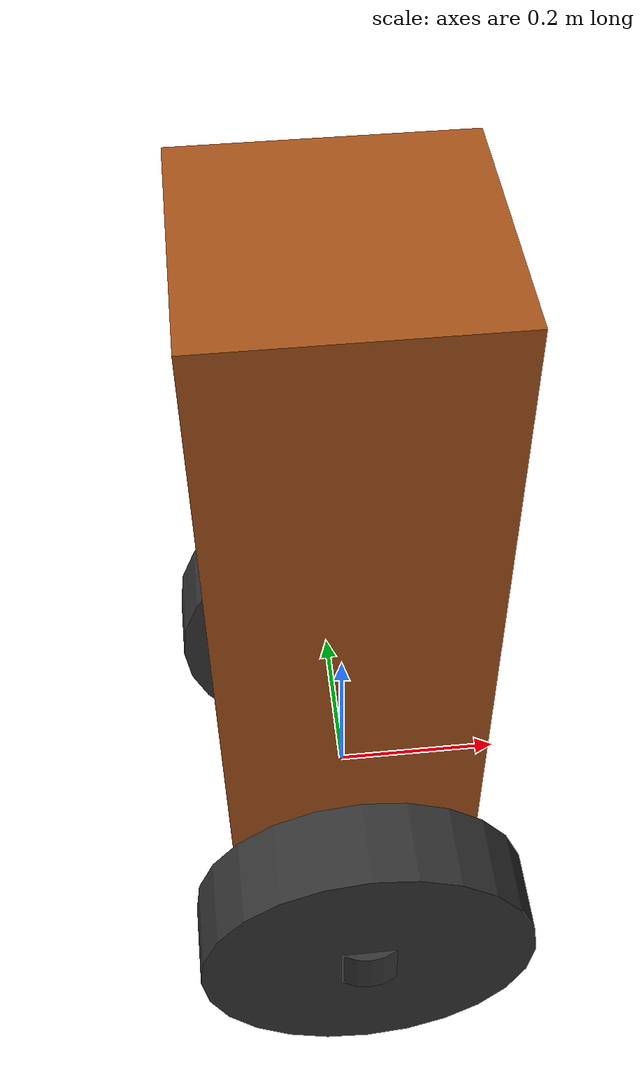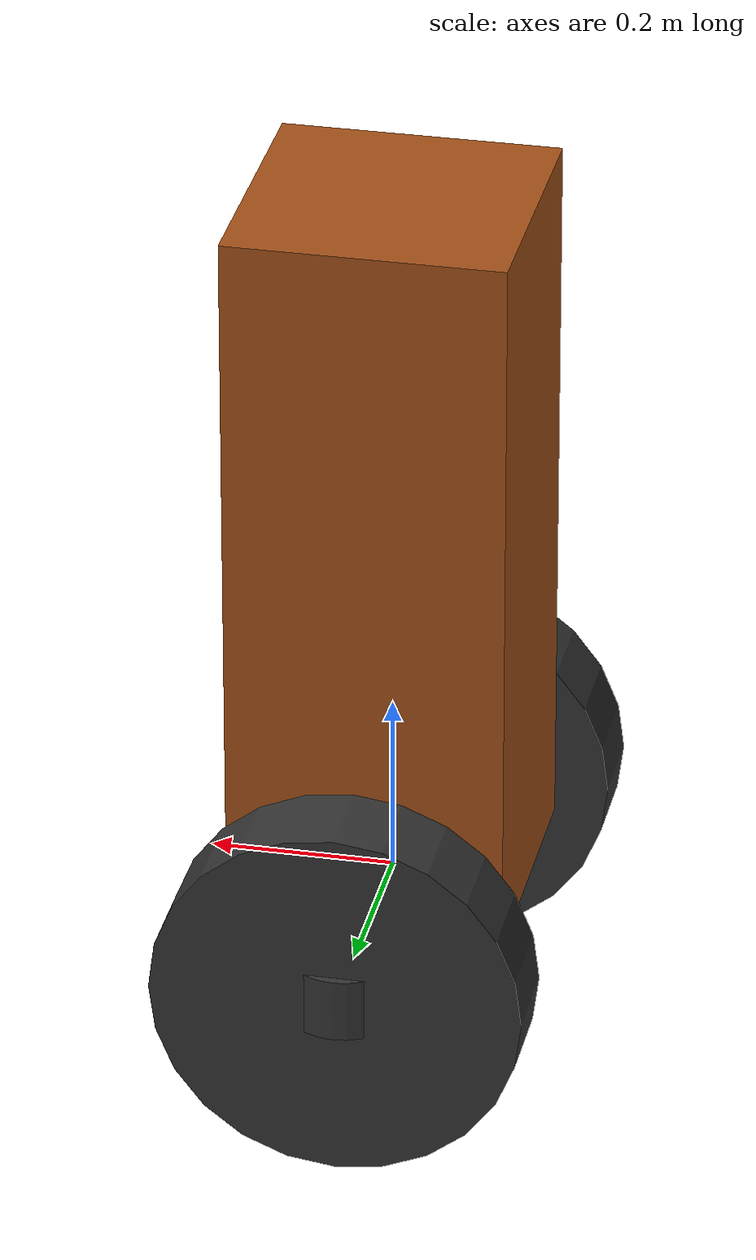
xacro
<?xml version="1.0"?>
<robot name="balance_bot" xmlns:xacro="http://www.ros.org/wiki/xacro">
  <xacro:include filename="$(find balance_bot_description)/urdf/balance_bot_friction.urdf"/>

  <xacro:arg name="wheel_mass" default="1.0" />
  <xacro:arg name="wheel_radius" default="0.2" />
  <xacro:arg name="body_mass" default="10.0" />
  <xacro:arg name="body_width" default="0.3" />
  <xacro:arg name="body_depth" default="0.3" />
  <xacro:arg name="body_length" default="0.8" />
  <xacro:arg name="training_wheels" default="false" />

  <xacro:property name="wheel_mass" value="$(arg wheel_mass)" />
  <xacro:property name="wheel_radius" value="$(arg wheel_radius)" />
  <xacro:property name="wheel_thickness" value="0.1" />
  <xacro:property name="wheelbase" value="${0.2 + body_width}" />

  <xacro:property name="body_mass" value="$(arg body_mass)" />
  <xacro:property name="body_width" value="$(arg body_width)" />
  <xacro:property name="body_depth" value="$(arg body_depth)" />
  <xacro:property name="body_length" value="$(arg body_length)" />

  <!-- IMU -->
  <link name="imu_link">
    <collision>
      <origin xyz="0 0 0" rpy="0 0 0"/>
      <geometry>
        <box size="0.02 0.015 0.008"/>
      </geometry>
    </collision>

    <visual>
      <origin xyz="0 0 0" rpy="0 0 0"/>
    <geometry>
        <box size="0.02 0.015 0.008"/>
      </geometry>
    </visual>

    <inertial>
      <mass value="1e-5" />
      <origin xyz="0 0 0" rpy="0 0 0"/>
      <inertia ixx="0" ixy="0" ixz="0" iyy="0" iyz="0" izz="0" />
    </inertial>
  </link>

  <joint name="imujoint" type="fixed">
    <origin xyz="0 0 0" rpy="0 0 0" />
    <parent link="body_com" />
    <child link="imu_link" />
    <axis xyz="0 0 0" />
  </joint>

  <xacro:macro name="wheel" params="name y_offset" >
    <link name="${name}" >
      <inertial>
        <origin xyz="0 0 0" rpy="0 0 0"/>
        <mass value="${wheel_mass}"/>
        <inertia ixx="${wheel_mass/12*(3*wheel_radius*wheel_radius + wheel_thickness*wheel_thickness)}" ixy="0" ixz="0" iyy="${wheel_mass/12*(3*wheel_radius*wheel_radius + wheel_thickness*wheel_thickness)}" iyz="0" izz="${wheel_mass/2 * wheel_radius*wheel_radius}"/>
      </inertial>
      <visual>
        <origin xyz="0 0 0" rpy="0 0 0"/>
        <geometry>
          <cylinder radius="${wheel_radius}" length="${wheel_thickness}"/>
        </geometry>
        <material name="grey"/>
      </visual>
      <visual>
        <origin xyz="0 0 0" rpy="1.5707 0 0"/>
        <geometry>
          <cylinder radius="${wheel_thickness/2 + 0.01}" length="0.07"/>
        </geometry>
        <material name="grey"/>
      </visual>
      <collision name="collision_${name}">
        <origin xyz="0 0 0" rpy="0 0 0"/>
        <geometry>
          <cylinder radius="${wheel_radius}" length="${wheel_thickness}"/>
        </geometry>
      </collision>
    </link>
    <joint name="${name}" type="continuous">
      <origin xyz="0 ${y_offset} 0" rpy="-1.570796 0 0"/>
      <parent link="base_link"/>
      <child link="${name}"/>
      <axis xyz="0 0 1" />
    </joint>
  </xacro:macro>

  <wheel name="left_wheel" y_offset="${wheelbase/2}" />
  <wheel name="right_wheel" y_offset="${-wheelbase/2}" />

  <link name="body_com">
    <inertial>
      <origin xyz="0 0 0" rpy="0 0 0"/>
      <mass value="${body_mass}"/>
      <inertia ixx="${body_mass/12 * (body_width*body_width + body_length*body_length)}" ixy="0" ixz="0" iyy="${body_mass/12 * (body_length*body_length + body_depth*body_depth)}" iyz="0" izz="${body_mass/12 * (body_width*body_width + body_depth*body_depth)}"/>
    </inertial>
    <visual>
      <origin xyz="0 0 0" rpy="0 0 0"/>
      <geometry>
        <box size="${body_depth} ${body_width} ${body_length}"/>
      </geometry>
      <material name="orange"/>
    </visual>
    <collision name="collision_chassis">
      <origin xyz="0 0 0" rpy="0 0 0"/>
      <geometry>
        <box size="${body_depth} ${body_width} ${body_length}"/>
      </geometry>
    </collision>
  </link>

  <link name="base_link">
    <inertial>
      <origin xyz="0 0 0" rpy="0 0 0"/>
      <mass value="0.01"/>
      <inertia ixx="0.01" ixy="0" ixz="0" iyy="0.01" iyz="0" izz="0.01"/>
    </inertial>
    <xacro:if value="$(arg training_wheels)" >
      <collision name="training_wheel_1">
        <origin xyz="1 0 ${0.025-wheel_radius}" rpy="0 0 0"/>
        <geometry>
          <sphere radius="0.024"/>
        </geometry>
      </collision>
      <collision name="training_wheel_2">
        <origin xyz="-1 0 ${0.025-wheel_radius}" rpy="0 0 0"/>
        <geometry>
          <sphere radius="0.024"/>
        </geometry>
      </collision>
    </xacro:if>
  </link>

  <joint name="base_com" type="fixed">
    <origin xyz="0 0 ${body_length/2}" rpy="0 0 0"/>
    <parent link="base_link"/>
    <child link="body_com"/>
  </joint>

  <material name="grey">
    <color rgba="0.2 0.2 0.2 1.0"/>
  </material>

  <material name="orange">
    <color rgba="0.64 0.313939 0.095351 1.0"/>
  </material>

<gazebo>
    <plugin name="gazebo_ros_control" filename="libgazebo_ros_control.so">
     <robotNamespace>/balance_bot</robotNamespace>
     <robotSimType>gazebo_ros_control/DefaultRobotHWSim</robotSimType>
    </plugin>
</gazebo>

<transmission name="left_wheel_control">
    <type>transmission_interface/SimpleTransmission</type>
    <joint name="left_wheel">
     <hardwareInterface>hardware_interface/EffortJointInterface</hardwareInterface>
    </joint>
    <actuator name="left_wheel_motor">
     <hardwareInterface>hardware_interface/EffortJointInterface</hardwareInterface>
     <mechanicalReduction>1</mechanicalReduction>
    </actuator>
</transmission>

<transmission name="right_wheel_control">
    <type>transmission_interface/SimpleTransmission</type>
    <joint name="right_wheel">
     <hardwareInterface>hardware_interface/EffortJointInterface</hardwareInterface>
    </joint>
    <actuator name="right_wheel_motor">
     <hardwareInterface>hardware_interface/EffortJointInterface</hardwareInterface>
     <mechanicalReduction>1</mechanicalReduction>
    </actuator>
</transmission>

  <!-- imu plugin -->
  <gazebo reference="imu_link">
    <gravity>true</gravity>
    <sensor name="imu_sensor" type="imu">
      <always_on>true</always_on>
      <update_rate>200</update_rate>
      <visualize>true</visualize>
      <topic>default_topic</topic>
      <plugin filename="libgazebo_ros_imu_sensor.so" name="imu_plugin">
        <topicName>imu</topicName>
        <bodyName>imu_link</bodyName>
        <updateRateHZ>200.0</updateRateHZ>
        <gaussianNoise>0.0</gaussianNoise>
        <xyzOffset>0 0 0</xyzOffset>
        <rpyOffset>0 0 0</rpyOffset>
        <frameName>imu_link</frameName>
        <initialOrientationAsReference>false</initialOrientationAsReference>
      </plugin>
      <pose>0 0 0 0 0 0</pose>
    </sensor>
  </gazebo>
  <gazebo>
    <plugin name="novatel_gps_sim" filename="libhector_gazebo_ros_gps.so">
      <alwaysOn>1</alwaysOn>
      <updateRate>20.0</updateRate>
      <bodyName>body_com</bodyName>
      <topicName>gps</topicName>
      <velocityTopicName>gps_velocity</velocityTopicName>
      <drift>0.0 0.0 0.0</drift>
      <gaussianNoise>0.0 0.0 0.0</gaussianNoise>
      <velocityDrift>0 0 0</velocityDrift>
      <velocityGaussianNoise>0.0 0.0 0.0</velocityGaussianNoise>
    </plugin>
   </gazebo>
</robot>
